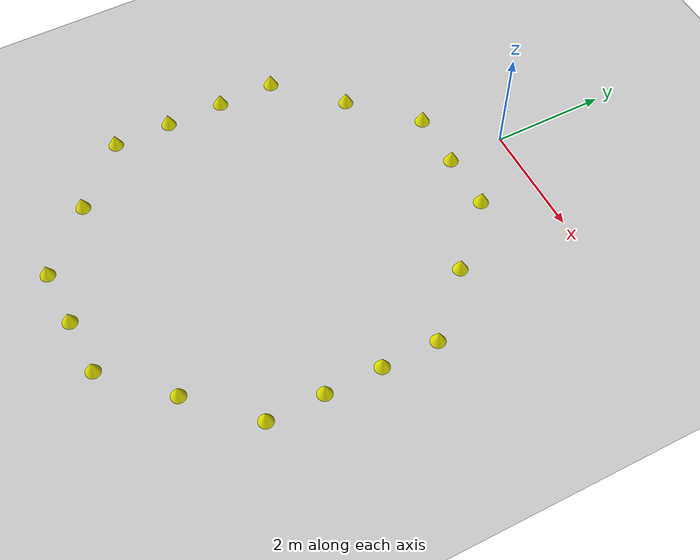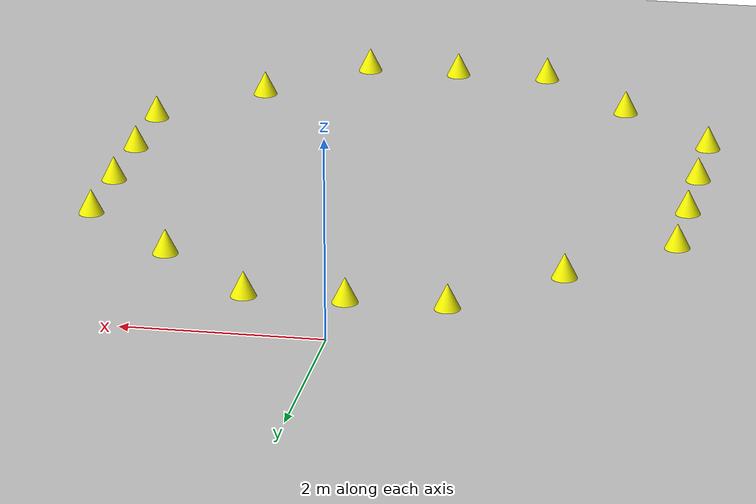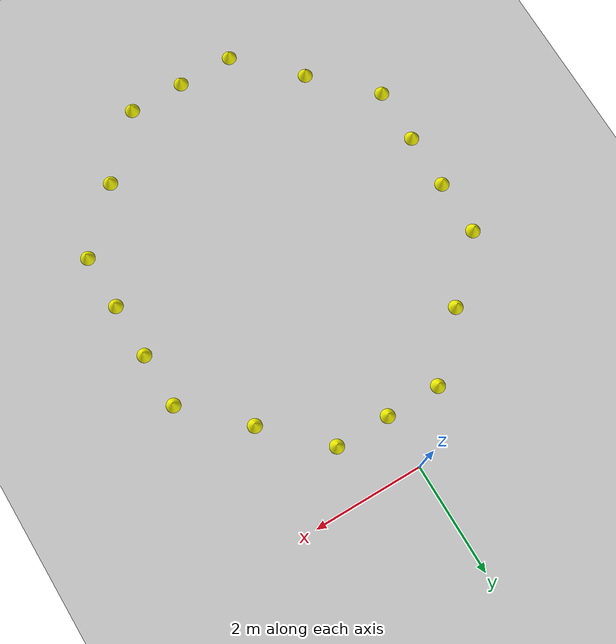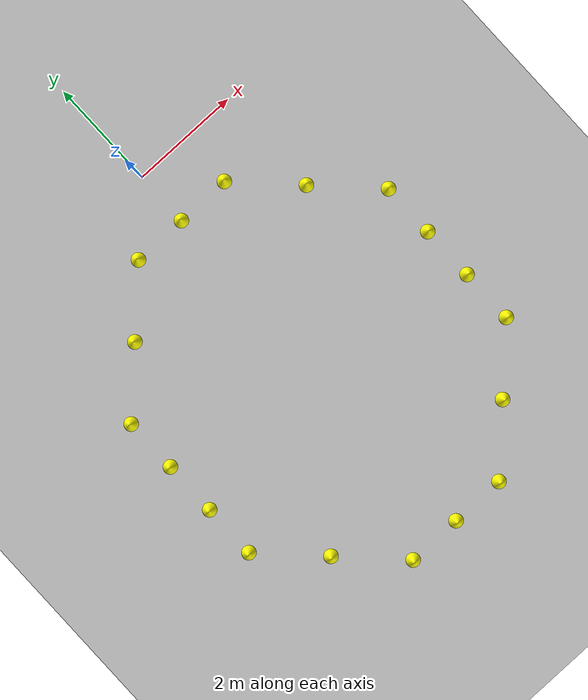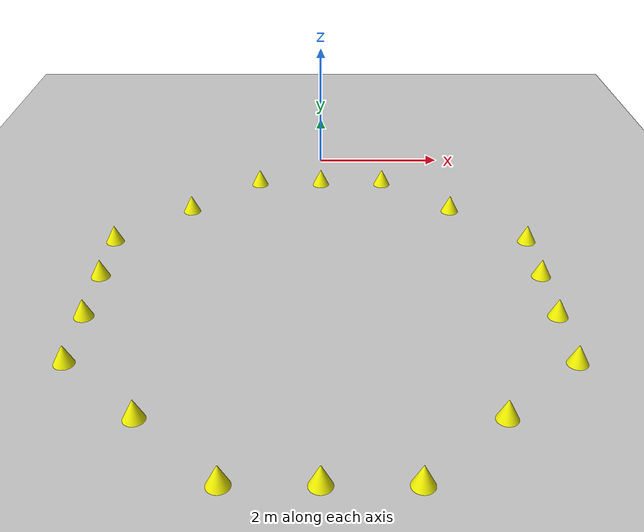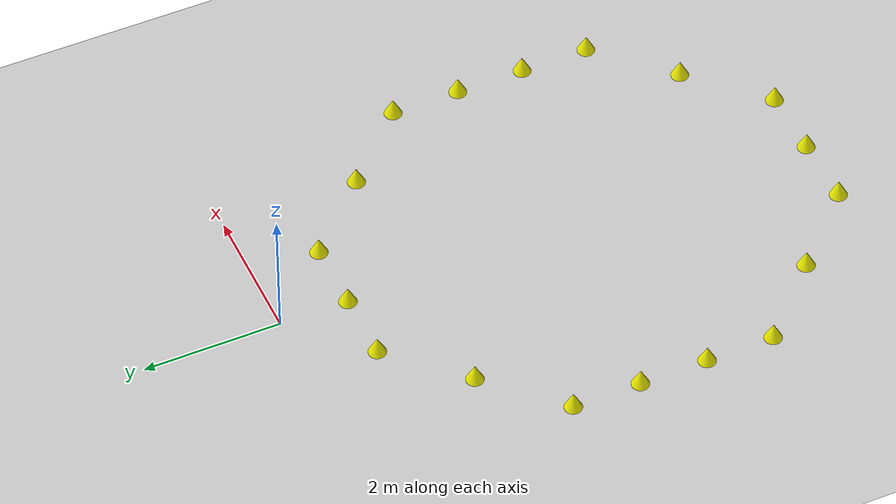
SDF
<sdf version="1.9">
 <world name="car_world">
  <plugin filename="ignition-gazebo-physics-system" name="ignition::gazebo::systems::Physics"/>
  <plugin filename="ignition-gazebo-scene-broadcaster-system" name="ignition::gazebo::systems::SceneBroadcaster"/>
  <plugin filename="libignition-gazebo-imu-system.so" name="ignition::gazebo::systems::Imu"/>
  <plugin filename="libignition-gazebo-contact-system.so" name="ignition::gazebo::systems::Contact"/>
  <plugin filename="libignition-gazebo-sensors-system.so" name="ignition::gazebo::systems::Sensors">
   <render_engine>ogre2</render_engine>
  </plugin>
  <plugin filename="ignition-gazebo-user-commands-system" name="gz::sim::systems::UserCommands"/>
  <physics name="50ms" type="ignored">
   <max_step_size>0.05</max_step_size>
   <real_time_update_rate>0</real_time_update_rate>
   <real_time_factor>1.0</real_time_factor>
  </physics>
  <light type="directional" name="sun">
   <cast_shadows>false</cast_shadows>
   <pose>0 0 10 0 0 0</pose>
   <diffuse>0.8 0.8 0.8 1</diffuse>
   <specular>0.2 0.2 0.2 1</specular>
   <attenuation>
    <range>1000</range>
    <constant>0.9</constant>
    <linear>0.01</linear>
    <quadratic>0.001</quadratic>
   </attenuation>
   <direction>-0.5 0.1 -0.9</direction>
  </light>
  <include><name>cone_31</name><uri>model://yellow_cone</uri><pose>0 -1 0 0 0 0</pose></include>
  <include><name>cone_32</name><uri>model://yellow_cone</uri><pose>1 -1 0 0 0 0</pose></include>
  <include><name>cone_33</name><uri>model://yellow_cone</uri><pose>2 -2 0 0 0 0</pose></include>
  <include><name>cone_34</name><uri>model://yellow_cone</uri><pose>3 -3 0 0 0 0</pose></include>
  <include><name>cone_35</name><uri>model://yellow_cone</uri><pose>3 -4 0 0 0 0</pose></include>
  <include><name>cone_36</name><uri>model://yellow_cone</uri><pose>3 -5 0 0 0 0</pose></include>
  <include><name>cone_37</name><uri>model://yellow_cone</uri><pose>3 -6 0 0 0 0</pose></include>
  <include><name>cone_38</name><uri>model://yellow_cone</uri><pose>2 -7 0 0 0 0</pose></include>
  <include><name>cone_39</name><uri>model://yellow_cone</uri><pose>1 -8 0 0 0 0</pose></include>
  <include><name>cone_40</name><uri>model://yellow_cone</uri><pose>0 -8 0 0 0 0</pose></include>
  <include><name>cone_41</name><uri>model://yellow_cone</uri><pose>-1 -8 0 0 0 0</pose></include>
  <include><name>cone_42</name><uri>model://yellow_cone</uri><pose>-2 -7 0 0 0 0</pose></include>
  <include><name>cone_43</name><uri>model://yellow_cone</uri><pose>-3 -6 0 0 0 0</pose></include>
  <include><name>cone_44</name><uri>model://yellow_cone</uri><pose>-3 -5 0 0 0 0</pose></include>
  <include><name>cone_45</name><uri>model://yellow_cone</uri><pose>-3 -4 0 0 0 0</pose></include>
  <include><name>cone_46</name><uri>model://yellow_cone</uri><pose>-3 -3 0 0 0 0</pose></include>
  <include><name>cone_47</name><uri>model://yellow_cone</uri><pose>-2 -2 0 0 0 0</pose></include>
  <include><name>cone_48</name><uri>model://yellow_cone</uri><pose>-1 -1 0 0 0 0</pose></include>
  <model name="ground_plane">
   <static>true</static>
   <link name="link">
    <collision name="collision"><geometry><plane><normal>0 0 1</normal></plane></geometry></collision>
    <visual name="visual">
     <geometry><plane><normal>0 0 1</normal><size>100 100</size></plane></geometry>
     <material>
      <ambient>0.8 0.8 0.8 1</ambient>
      <diffuse>0.8 0.8 0.8 1</diffuse>
      <specular>0.8 0.8 0.8 1</specular>
     </material>
    </visual>
   </link>
  </model>
 </world>
</sdf>

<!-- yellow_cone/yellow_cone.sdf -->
<sdf version="1.9">
<model name="cone">
    <static>true</static>
    <link name='cone_link'>
        <visual name='visual'>
          <geometry>
           <mesh>
              <uri>model://cone/meshes/cone_mesh.dae</uri>
              <scale>0.25 0.25 0.25</scale>
           </mesh>
          </geometry>
          <material>
            <ambient>1 1 0 1</ambient>
            <diffuse>1 1 0 1</diffuse>
            <specular>1 1 0 1</specular>
          </material>
        </visual>
        <collision name='visual'>
          <geometry>
           <box>
               <size> 0.25 0.25 0.25</size>
            </box>
          </geometry>
        </collision>
    </link>
</model>
</sdf>
